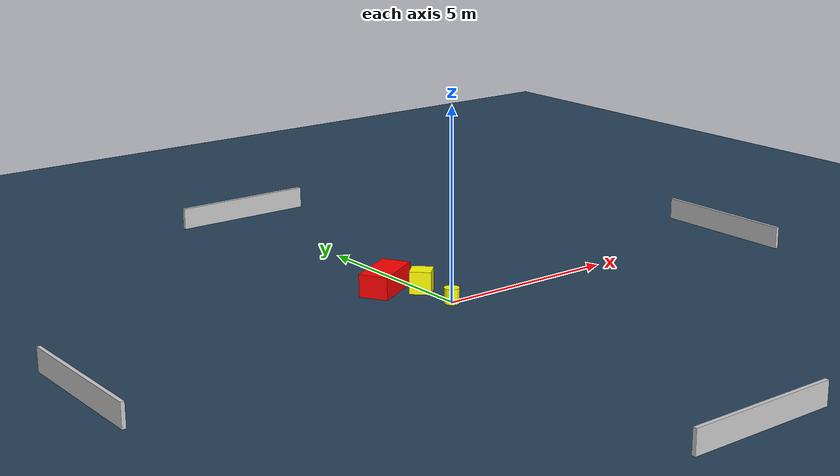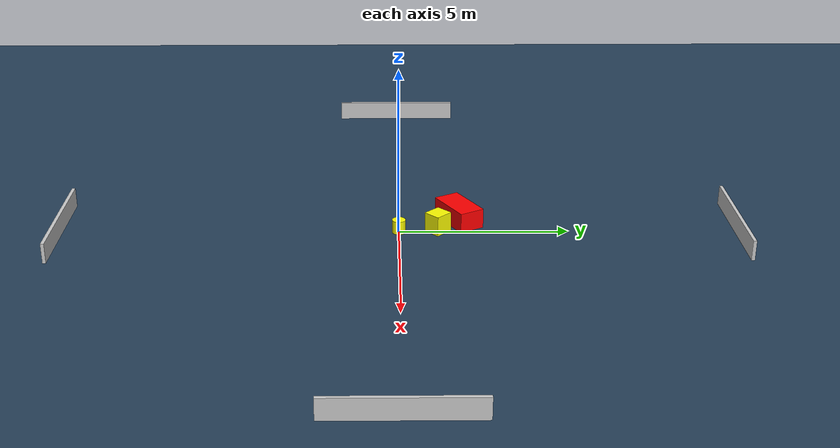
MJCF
<?xml version="1.0" ?>
<mujoco model="generated_environment">
  <option timestep="0.01" integrator="RK4" cone="elliptic"/>
  <default>
    <geom density="1"/>
  </default>
  <asset>
    <texture builtin="gradient" height="3072" name="skybox" rgb1="0.3 0.5 0.7" rgb2="0 0 0" type="skybox" width="512"/>
    <texture builtin="checker" height="300" name="groundplane" rgb1="0.2 0.3 0.4" rgb2="0.1 0.2 0.3" type="2d" width="300"/>
    <material name="groundplane" reflectance="0.2" texrepeat="5 5" texture="groundplane"/>
  </asset>
  <worldbody>
    <light dir="0 0 -1" directional="true" pos="0 0 1.5"/>
    <geom condim="3" friction="0.5 0.005 0.001" material="groundplane" name="floor" pos="0 0 0" size="0 0 0.05" type="plane"/>
    <body name="walls">
      <geom name="wall_1" condim="4" pos="-10.0 0.0 0.3" rgba="0.800000011920929 0.800000011920929 0.800000011920929 1.0" size="0.05 2.0 0.3" type="box"/>
      <geom name="wall_2" condim="4" pos="10.0 0.0 0.3" rgba="0.800000011920929 0.800000011920929 0.800000011920929 1.0" size="0.05 2.0 0.3" type="box"/>
      <geom name="wall_3" condim="4" pos="0.0 -10.0 0.3" rgba="0.800000011920929 0.800000011920929 0.800000011920929 1.0" size="2.0 0.05 0.3" type="box"/>
      <geom name="wall_4" condim="4" pos="0.0 10.0 0.3" rgba="0.800000011920929 0.800000011920929 0.800000011920929 1.0" size="2.0 0.05 0.3" type="box"/>
    </body>
    <body name="robot">
      <joint name="joint_x" type="slide" pos="0 0 0" axis="1 0 0"/>
      <joint name="joint_y" type="slide" pos="0 0 0" axis="0 1 0"/>
      <geom name="robot" type="cylinder" pos="0.0 0.0 0.2" size="0.2 0.2 0.0" mass="5.0" friction="1.0 0.005 0.0001" condim="4" rgba="1.0 1.0 0.0 1.0"/>
    </body>
    <body name="obstacle_1_movable">
      <geom name="obstacle_1_movable" condim="4" pos="-0.06220417716935196 1.161049514469545 0.3" euler="0 0 44.32567963888631" friction="0.0 0.005 0.001" rgba="1.0 1.0 0.0 1.0" size="0.2642443676981575 0.2823850214219843 0.3" type="box" mass="0.1"/>
      <joint type="free"/>
    </body>
    <body name="obstacle_2_static">
      <geom name="obstacle_2_static" condim="4" pos="-0.7390365911470251 1.8145054314438975 0.3" euler="0 0 29.60018678270993" friction="0.0 0.005 0.001" rgba="1.0 0.0 0.0 1.0" size="0.7296831540949649 0.3916768730130531 0.3" type="box"/>
    </body>
  </worldbody>
  <actuator>
    <motor name="actuator_x" joint="joint_x" gear="1" ctrlrange="-1 1"/>
    <motor name="actuator_y" joint="joint_y" gear="1" ctrlrange="-1 1"/>
  </actuator>
</mujoco>
